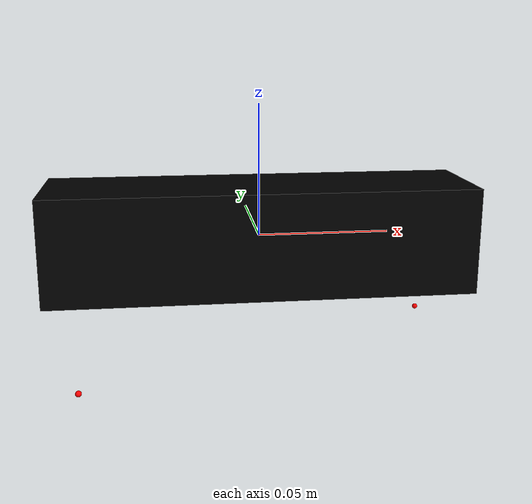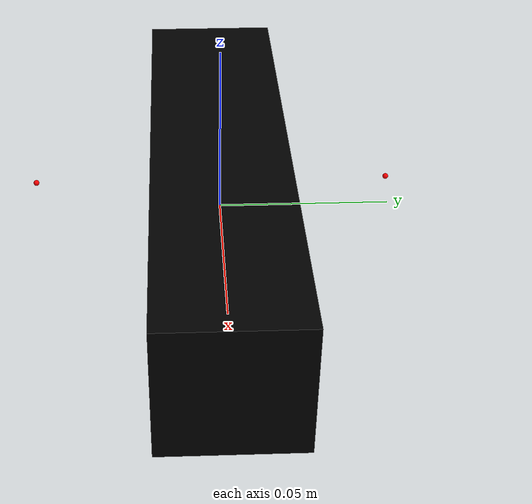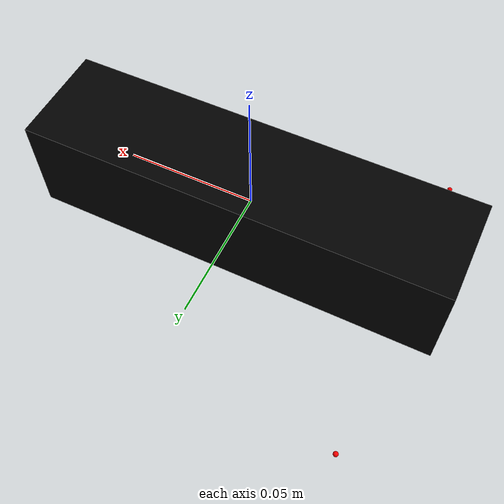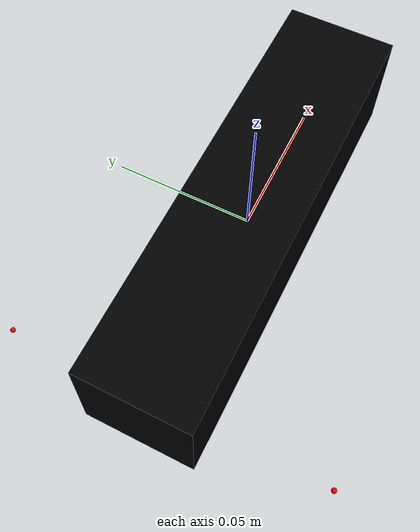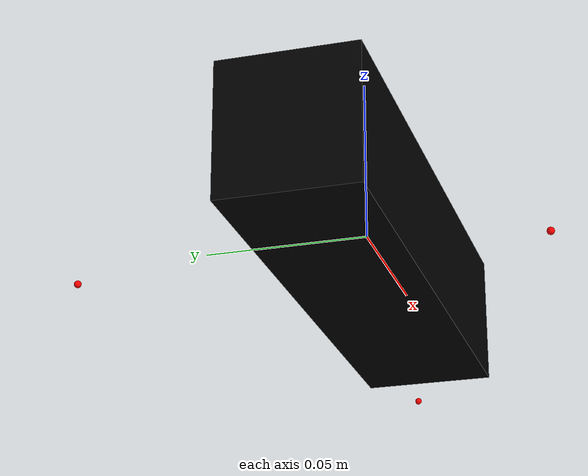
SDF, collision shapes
<?xml version="1.0"?>
<sdf version="1.7">
<model name="sphere">
    <link name="body">
    <inertial>
        <pose>0 0 0 0 0 0</pose>
        <mass>0.5</mass>
        <!-- Inertia values were calculated to be consistent with the mass and
            geometry size, assuming a uniform density. -->
        <inertia>
            <ixx>0.0001333</ixx>
            <iyy>0.0011333 </iyy>
            <izz>0.0011333 </izz>
            <ixy>0.0</ixy>
            <ixz>0.0</ixz>
            <iyz>0.0</iyz>
        </inertia>
    </inertial>

    <visual name="sphere">
        <pose>0 0 0 0 0 0</pose>
        <geometry>
            <mesh filename="{filename}"/>
        </geometry>
        <material>
        <diffuse>0 0 0 1</diffuse>
        </material>
    </visual>
    <collision name="vertical_link_volume">
        <pose>0 0 0 0 0 0</pose>
            <geometry>
        <box>
            <size>0.16 0.04 0.04</size>
        </box>
        </geometry>
        <drake:proximity_properties>
        <drake:compliant_hydroelastic/>
        <drake:hydroelastic_modulus> 3.0e7 </drake:hydroelastic_modulus>
        <drake:mesh_resolution_hint> 0.18 </drake:mesh_resolution_hint>
        <drake:hunt_crossley_dissipation>10</drake:hunt_crossley_dissipation>
        <drake:mu_dynamic>0.3</drake:mu_dynamic>
        </drake:proximity_properties>
    </collision>
    </link>

    <link name="corner_0">
      <inertial>
        <pose>0 0 0 0 0 0</pose>
        <mass>0</mass>
        <inertia>
          <ixx>0.</ixx>
          <ixy>0</ixy>
          <ixz>0</ixz>
          <iyy>0.</iyy>
          <iyz>0</iyz>
          <izz>0.</izz>
        </inertia>
      </inertial>
    <collision name="corner_0">
        <geometry>
          <sphere>
            <radius>0.001</radius>
          </sphere>
        </geometry>
        <drake:proximity_properties>
        <drake:mu_dynamic>0.3</drake:mu_dynamic>
        </drake:proximity_properties>
        <pose> 0.063 0 -0.0315 0 0 0</pose>
      </collision>
    <visual name="corner_0">
        <geometry>
          <sphere>
            <radius>0.001</radius>
          </sphere>
        </geometry>
        <material>
        <diffuse>1 0 0 1</diffuse>
        </material>
        <pose> 0.063 0 -0.0315 0 0 0</pose>
      </visual>
    </link>

    <link name="corner_1">
      <inertial>
        <pose>0 0 0 0 0 0</pose>
        <mass>0</mass>
        <inertia>
          <ixx>0.</ixx>
          <ixy>0</ixy>
          <ixz>0</ixz>
          <iyy>0.</iyy>
          <iyz>0</iyz>
          <izz>0.</izz>
        </inertia>
      </inertial>
    <collision name="corner_1">
        <geometry>
          <sphere>
            <radius>0.001</radius>
          </sphere>
        </geometry>
        <drake:proximity_properties>
        <drake:mu_dynamic>0.3</drake:mu_dynamic>
        </drake:proximity_properties>
        <pose> -0.063 -0.063 -0.0315 0 0 0</pose>
      </collision>
    <visual name="corner_1">
        <geometry>
          <sphere>
            <radius>0.001</radius>
          </sphere>
        </geometry>
        <material>
        <diffuse>1 0 0 1</diffuse>
        </material>
        <pose> -0.063 -0.063 -0.0315 0 0 0</pose>
      </visual>
    </link>

    <link name="corner_2">
      <inertial>
        <pose>0 0 0 0 0 0</pose>
        <mass>0</mass>
        <inertia>
          <ixx>0.</ixx>
          <ixy>0</ixy>
          <ixz>0</ixz>
          <iyy>0.</iyy>
          <iyz>0</iyz>
          <izz>0.</izz>
        </inertia>
      </inertial>
    <collision name="corner_2">
        <geometry>
          <sphere>
            <radius>0.001</radius>
          </sphere>
        </geometry>
        <drake:proximity_properties>
        <drake:mu_dynamic>0.3</drake:mu_dynamic>
        </drake:proximity_properties>
        <pose> -0.063 0.063 -0.0315 0 0 0</pose>
      </collision>
    <visual name="corner_2">
        <geometry>
          <sphere>
            <radius>0.001</radius>
          </sphere>
        </geometry>
        <material>
        <diffuse>1 0 0 1</diffuse>
        </material>
        <pose> -0.063 0.063 -0.0315 0 0 0</pose>
      </visual>
    </link>

    </model>
</sdf>
